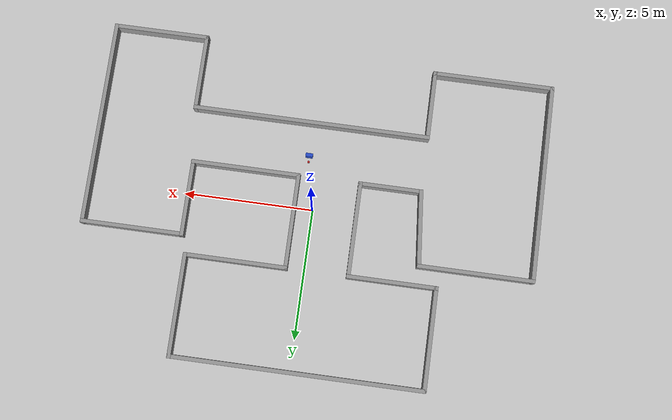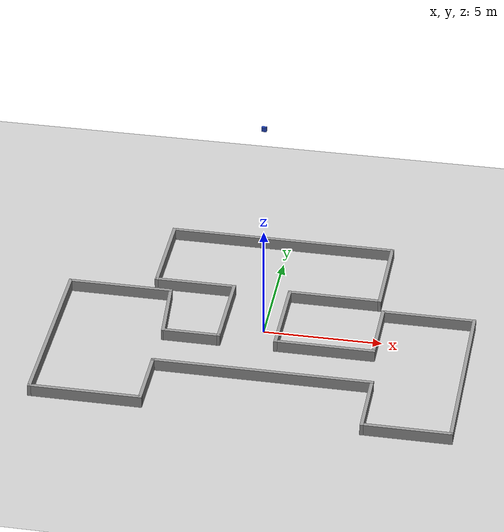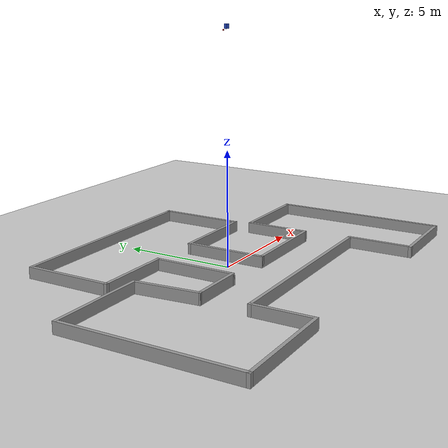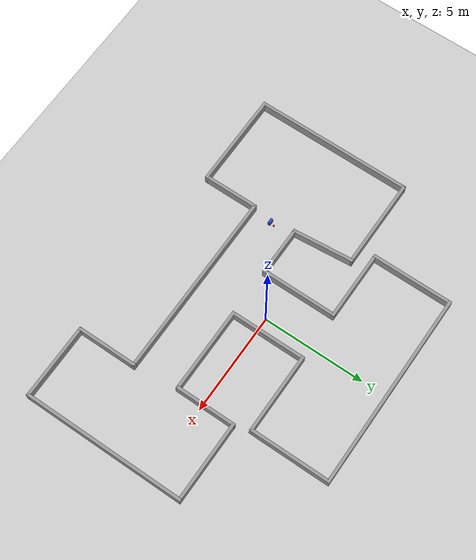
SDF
<sdf version="1.6">
  <world name="default">
    <include>
      <uri>model://sun</uri>
    </include>

    <model name="ground_plane">
      <static>true</static>
      <link name="link">
        <collision name="collision">
          <geometry>
            <plane>
              <normal>0 0 1</normal>
              <size>100 100</size>
            </plane>
          </geometry>
          <surface>
            <friction>
              <ode>
                <mu>100</mu>
                <mu2>50</mu2>
              </ode>
            </friction>
            <torsional>
              <ode/>
            </torsional>
          </surface>
          <contact>
            <ode/>
          </contact>
          <bounce/>
        </collision>
        <visual name="visual">
          <geometry>
            <plane>
              <normal>0 0 1</normal>
              <size>100 100</size>
            </plane>
          </geometry>
          <material>
            <script>
              <uri>file://media/materials/scripts/gazebo.material</uri>
              <name>Gazebo/Grey</name>
            </script>
          </material>
        </visual>
        <self_collide>0</self_collide>
        <kinematic>0</kinematic>
        <gravity>1</gravity>
      </link>
    </model>

     <include>
      <uri>model://test_map</uri>
      <name>model</name>
      <pose>0 0 0 0 0 0</pose>
    </include>

    <model name="my_robot_with_camera">
    <static>true</static>
      <pose>0 0 10 0 1.5708 1.5708</pose>
      <link name="base_link">
        <inertial>
          <mass>1.0</mass>
          <inertia>
            <ixx>0.1</ixx>
            <ixy>0.0</ixy>
            <ixz>0.0</ixz>
            <iyy>0.1</iyy>
            <iyz>0.0</iyz>
            <izz>0.1</izz>
          </inertia>
        </inertial>
        <visual name="visual">
          <geometry>
            <box>
              <size>0.2 0.2 0.1</size>
            </box>
          </geometry>
          <material>
            <script>
              <uri>file://media/materials/scripts/gazebo.material</uri>
              <name>Gazebo/Blue</name>
            </script>
          </material>
        </visual>
        <collision name="collision">
          <geometry>
            <box>
              <size>0.2 0.2 0.1</size>
            </box>
          </geometry>
        </collision>
      </link>

      <link name="camera_link">
        <pose>0.15 0 0.15  0 0 0</pose>
        <visual name="camera_visual">
          <geometry>
            <box>
              <size>0.05 0.05 0.05</size>
            </box>
          </geometry>
          <material>
            <script>
              <uri>file://media/materials/scripts/gazebo.material</uri>
              <name>Gazebo/Red</name>
            </script>
          </material>
        </visual>
        <inertial>
          <mass>0.01</mass>
          <inertia>
            <ixx>1e-6</ixx>
            <ixy>0</ixy>
            <ixz>0</ixz>
            <iyy>1e-6</iyy>
            <iyz>0</iyz>
            <izz>1e-6</izz>
          </inertia>
        </inertial>
        <sensor name="camera_sensor" type="camera">
          <camera>
            <horizontal_fov>1.047</horizontal_fov>
            <image>
              <width>640</width>
              <height>480</height>
              <format>R8G8B8</format>
            </image>
            <clip>
              <near>0.1</near>
              <far>100</far>
            </clip>
          </camera>
          <plugin name="camera_controller" filename="libgazebo_ros_camera.so">
            <ros>
              <namespace>/my_robot</namespace>
              <remapping>image:=camera/image_raw</remapping>
            </ros>
            <cameraName>camera</cameraName>
            <updateRate>30.0</updateRate>
            <imageTopicName>camera/image_raw</imageTopicName>
            <cameraInfoTopicName>camera/camera_info</cameraInfoTopicName>
            <frameName>camera_link</frameName>
          </plugin>
        </sensor>
      </link>

      <joint name="camera_joint" type="fixed">
        <parent>base_link</parent>
        <child>camera_link</child>
        <pose>0.1 0 0.1 0 0 0</pose>
      </joint>
    </model>

  </world>
</sdf>

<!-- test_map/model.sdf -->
<sdf version='1.6'>
  <model name='test_map'>
    <pose frame=''>0.461 2.457 0 0 -0 0</pose>
    <link name='Wall_11'>
      <collision name='Wall_11_Collision'>
        <geometry>
          <box>
            <size>2.5 0.15 0.5</size>
          </box>
        </geometry>
        <pose frame=''>0 0 0.25 0 -0 0</pose>
      </collision>
      <visual name='Wall_11_Visual'>
        <pose frame=''>0 0 0.25 0 -0 0</pose>
        <geometry>
          <box>
            <size>2.5 0.15 0.5</size>
          </box>
        </geometry>
        <material>
          <script>
            <uri>file://media/materials/scripts/gazebo.material</uri>
            <name>Gazebo/Grey</name>
          </script>
          <ambient>1 1 1 1</ambient>
        </material>
        <meta>
          <layer>0</layer>
        </meta>
      </visual>
      <pose frame=''>-2.875 -1.225 0 0 -0 0</pose>
    </link>
    <link name='Wall_12'>
      <collision name='Wall_12_Collision'>
        <geometry>
          <box>
            <size>3.75 0.15 0.5</size>
          </box>
        </geometry>
        <pose frame=''>0 0 0.25 0 -0 0</pose>
      </collision>
      <visual name='Wall_12_Visual'>
        <pose frame=''>0 0 0.25 0 -0 0</pose>
        <geometry>
          <box>
            <size>3.75 0.15 0.5</size>
          </box>
        </geometry>
        <material>
          <script>
            <uri>file://media/materials/scripts/gazebo.material</uri>
            <name>Gazebo/Grey</name>
          </script>
          <ambient>1 1 1 1</ambient>
        </material>
        <meta>
          <layer>0</layer>
        </meta>
      </visual>
      <pose frame=''>-1.7 0.575 0 0 -0 1.5708</pose>
    </link>
    <link name='Wall_13'>
      <collision name='Wall_13_Collision'>
        <geometry>
          <box>
            <size>3.5 0.15 0.5</size>
          </box>
        </geometry>
        <pose frame=''>0 0 0.25 0 -0 0</pose>
      </collision>
      <visual name='Wall_13_Visual'>
        <pose frame=''>0 0 0.25 0 -0 0</pose>
        <geometry>
          <box>
            <size>3.5 0.15 0.5</size>
          </box>
        </geometry>
        <material>
          <script>
            <uri>file://media/materials/scripts/gazebo.material</uri>
            <name>Gazebo/Grey</name>
          </script>
          <ambient>1 1 1 1</ambient>
        </material>
        <meta>
          <layer>0</layer>
        </meta>
      </visual>
      <pose frame=''>-3.375 2.375 0 0 -0 3.14159</pose>
    </link>
    <link name='Wall_14'>
      <collision name='Wall_14_Collision'>
        <geometry>
          <box>
            <size>4 0.15 0.5</size>
          </box>
        </geometry>
        <pose frame=''>0 0 0.25 0 -0 0</pose>
      </collision>
      <visual name='Wall_14_Visual'>
        <pose frame=''>0 0 0.25 0 -0 0</pose>
        <geometry>
          <box>
            <size>4 0.15 0.5</size>
          </box>
        </geometry>
        <material>
          <script>
            <uri>file://media/materials/scripts/gazebo.material</uri>
            <name>Gazebo/Grey</name>
          </script>
          <ambient>1 1 1 1</ambient>
        </material>
        <meta>
          <layer>0</layer>
        </meta>
      </visual>
      <pose frame=''>-5.05 4.3 0 0 -0 1.5708</pose>
    </link>
    <link name='Wall_15'>
      <collision name='Wall_15_Collision'>
        <geometry>
          <box>
            <size>9.75 0.15 0.5</size>
          </box>
        </geometry>
        <pose frame=''>0 0 0.25 0 -0 0</pose>
      </collision>
      <visual name='Wall_15_Visual'>
        <pose frame=''>0 0 0.25 0 -0 0</pose>
        <geometry>
          <box>
            <size>9.75 0.15 0.5</size>
          </box>
        </geometry>
        <material>
          <script>
            <uri>file://media/materials/scripts/gazebo.material</uri>
            <name>Gazebo/Grey</name>
          </script>
          <ambient>1 1 1 1</ambient>
        </material>
        <meta>
          <layer>0</layer>
        </meta>
      </visual>
      <pose frame=''>-0.25 6.225 0 0 -0 0</pose>
    </link>
    <link name='Wall_16'>
      <collision name='Wall_16_Collision'>
        <geometry>
          <box>
            <size>4 0.15 0.5</size>
          </box>
        </geometry>
        <pose frame=''>0 0 0.25 0 -0 0</pose>
      </collision>
      <visual name='Wall_16_Visual'>
        <pose frame=''>0 0 0.25 0 -0 0</pose>
        <geometry>
          <box>
            <size>4 0.15 0.5</size>
          </box>
        </geometry>
        <material>
          <script>
            <uri>file://media/materials/scripts/gazebo.material</uri>
            <name>Gazebo/Grey</name>
          </script>
          <ambient>1 1 1 1</ambient>
        </material>
        <meta>
          <layer>0</layer>
        </meta>
      </visual>
      <pose frame=''>4.55 4.3 0 0 -0 -1.5708</pose>
    </link>
    <link name='Wall_17'>
      <collision name='Wall_17_Collision'>
        <geometry>
          <box>
            <size>4 0.15 0.5</size>
          </box>
        </geometry>
        <pose frame=''>0 0 0.25 0 -0 0</pose>
      </collision>
      <visual name='Wall_17_Visual'>
        <pose frame=''>0 0 0.25 0 -0 0</pose>
        <geometry>
          <box>
            <size>4 0.15 0.5</size>
          </box>
        </geometry>
        <material>
          <script>
            <uri>file://media/materials/scripts/gazebo.material</uri>
            <name>Gazebo/Grey</name>
          </script>
          <ambient>1 1 1 1</ambient>
        </material>
        <meta>
          <layer>0</layer>
        </meta>
      </visual>
      <pose frame=''>2.625 2.375 0 0 -0 3.14159</pose>
    </link>
    <link name='Wall_18'>
      <collision name='Wall_18_Collision'>
        <geometry>
          <box>
            <size>3.75 0.15 0.5</size>
          </box>
        </geometry>
        <pose frame=''>0 0 0.25 0 -0 0</pose>
      </collision>
      <visual name='Wall_18_Visual'>
        <pose frame=''>0 0 0.25 0 -0 0</pose>
        <geometry>
          <box>
            <size>3.75 0.15 0.5</size>
          </box>
        </geometry>
        <material>
          <script>
            <uri>file://media/materials/scripts/gazebo.material</uri>
            <name>Gazebo/Grey</name>
          </script>
          <ambient>1 1 1 1</ambient>
        </material>
        <meta>
          <layer>0</layer>
        </meta>
      </visual>
      <pose frame=''>0.7 0.575 0 0 -0 -1.5708</pose>
    </link>
    <link name='Wall_19'>
      <collision name='Wall_19_Collision'>
        <geometry>
          <box>
            <size>4.25 0.15 0.5</size>
          </box>
        </geometry>
        <pose frame=''>0 0 0.25 0 -0 0</pose>
      </collision>
      <visual name='Wall_19_Visual'>
        <pose frame=''>0 0 0.25 0 -0 0</pose>
        <geometry>
          <box>
            <size>4.25 0.15 0.5</size>
          </box>
        </geometry>
        <material>
          <script>
            <uri>file://media/materials/scripts/gazebo.material</uri>
            <name>Gazebo/Grey</name>
          </script>
          <ambient>1 1 1 1</ambient>
        </material>
        <meta>
          <layer>0</layer>
        </meta>
      </visual>
      <pose frame=''>2.75 -1.225 0 0 -0 0</pose>
    </link>
    <link name='Wall_20'>
      <collision name='Wall_20_Collision'>
        <geometry>
          <box>
            <size>3 0.15 0.5</size>
          </box>
        </geometry>
        <pose frame=''>0 0 0.25 0 -0 0</pose>
      </collision>
      <visual name='Wall_20_Visual'>
        <pose frame=''>0 0 0.25 0 -0 0</pose>
        <geometry>
          <box>
            <size>3 0.15 0.5</size>
          </box>
        </geometry>
        <material>
          <script>
            <uri>file://media/materials/scripts/gazebo.material</uri>
            <name>Gazebo/Grey</name>
          </script>
          <ambient>1 1 1 1</ambient>
        </material>
        <meta>
          <layer>0</layer>
        </meta>
      </visual>
      <pose frame=''>4.8 0.2 0 0 -0 1.5708</pose>
    </link>
    <link name='Wall_21'>
      <collision name='Wall_21_Collision'>
        <geometry>
          <box>
            <size>4 0.15 0.5</size>
          </box>
        </geometry>
        <pose frame=''>0 0 0.25 0 -0 0</pose>
      </collision>
      <visual name='Wall_21_Visual'>
        <pose frame=''>0 0 0.25 0 -0 0</pose>
        <geometry>
          <box>
            <size>4 0.15 0.5</size>
          </box>
        </geometry>
        <material>
          <script>
            <uri>file://media/materials/scripts/gazebo.material</uri>
            <name>Gazebo/Grey</name>
          </script>
          <ambient>1 1 1 1</ambient>
        </material>
        <meta>
          <layer>0</layer>
        </meta>
      </visual>
      <pose frame=''>6.725 1.625 0 0 -0 0</pose>
    </link>
    <link name='Wall_22'>
      <collision name='Wall_22_Collision'>
        <geometry>
          <box>
            <size>8 0.15 0.5</size>
          </box>
        </geometry>
        <pose frame=''>0 0 0.25 0 -0 0</pose>
      </collision>
      <visual name='Wall_22_Visual'>
        <pose frame=''>0 0 0.25 0 -0 0</pose>
        <geometry>
          <box>
            <size>8 0.15 0.5</size>
          </box>
        </geometry>
        <material>
          <script>
            <uri>file://media/materials/scripts/gazebo.material</uri>
            <name>Gazebo/Grey</name>
          </script>
          <ambient>1 1 1 1</ambient>
        </material>
        <meta>
          <layer>0</layer>
        </meta>
      </visual>
      <pose frame=''>8.65 -2.3 0 0 -0 -1.5708</pose>
    </link>
    <link name='Wall_23'>
      <collision name='Wall_23_Collision'>
        <geometry>
          <box>
            <size>3.75 0.15 0.5</size>
          </box>
        </geometry>
        <pose frame=''>0 0 0.25 0 -0 0</pose>
      </collision>
      <visual name='Wall_23_Visual'>
        <pose frame=''>0 0 0.25 0 -0 0</pose>
        <geometry>
          <box>
            <size>3.75 0.15 0.5</size>
          </box>
        </geometry>
        <material>
          <script>
            <uri>file://media/materials/scripts/gazebo.material</uri>
            <name>Gazebo/Grey</name>
          </script>
          <ambient>1 1 1 1</ambient>
        </material>
        <meta>
          <layer>0</layer>
        </meta>
      </visual>
      <pose frame=''>6.85 -6.225 0 0 -0 3.14159</pose>
    </link>
    <link name='Wall_24'>
      <collision name='Wall_24_Collision'>
        <geometry>
          <box>
            <size>3 0.15 0.5</size>
          </box>
        </geometry>
        <pose frame=''>0 0 0.25 0 -0 0</pose>
      </collision>
      <visual name='Wall_24_Visual'>
        <pose frame=''>0 0 0.25 0 -0 0</pose>
        <geometry>
          <box>
            <size>3 0.15 0.5</size>
          </box>
        </geometry>
        <material>
          <script>
            <uri>file://media/materials/scripts/gazebo.material</uri>
            <name>Gazebo/Grey</name>
          </script>
          <ambient>1 1 1 1</ambient>
        </material>
        <meta>
          <layer>0</layer>
        </meta>
      </visual>
      <pose frame=''>5.05 -4.8 0 0 -0 1.5708</pose>
    </link>
    <link name='Wall_25'>
      <collision name='Wall_25_Collision'>
        <geometry>
          <box>
            <size>9.25 0.15 0.5</size>
          </box>
        </geometry>
        <pose frame=''>0 0 0.25 0 -0 0</pose>
      </collision>
      <visual name='Wall_25_Visual'>
        <pose frame=''>0 0 0.25 0 -0 0</pose>
        <geometry>
          <box>
            <size>9.25 0.15 0.5</size>
          </box>
        </geometry>
        <material>
          <script>
            <uri>file://media/materials/scripts/gazebo.material</uri>
            <name>Gazebo/Grey</name>
          </script>
          <ambient>1 1 1 1</ambient>
        </material>
        <meta>
          <layer>0</layer>
        </meta>
      </visual>
      <pose frame=''>0.5 -3.375 0 0 -0 3.14159</pose>
    </link>
    <link name='Wall_26'>
      <collision name='Wall_26_Collision'>
        <geometry>
          <box>
            <size>2.75 0.15 0.5</size>
          </box>
        </geometry>
        <pose frame=''>0 0 0.25 0 -0 0</pose>
      </collision>
      <visual name='Wall_26_Visual'>
        <pose frame=''>0 0 0.25 0 -0 0</pose>
        <geometry>
          <box>
            <size>2.75 0.15 0.5</size>
          </box>
        </geometry>
        <material>
          <script>
            <uri>file://media/materials/scripts/gazebo.material</uri>
            <name>Gazebo/Grey</name>
          </script>
          <ambient>1 1 1 1</ambient>
        </material>
        <meta>
          <layer>0</layer>
        </meta>
      </visual>
      <pose frame=''>-4.05 -4.675 0 0 -0 -1.5708</pose>
    </link>
    <link name='Wall_27'>
      <collision name='Wall_27_Collision'>
        <geometry>
          <box>
            <size>4.75 0.15 0.5</size>
          </box>
        </geometry>
        <pose frame=''>0 0 0.25 0 -0 0</pose>
      </collision>
      <visual name='Wall_27_Visual'>
        <pose frame=''>0 0 0.25 0 -0 0</pose>
        <geometry>
          <box>
            <size>4.75 0.15 0.5</size>
          </box>
        </geometry>
        <material>
          <script>
            <uri>file://media/materials/scripts/gazebo.material</uri>
            <name>Gazebo/Grey</name>
          </script>
          <ambient>1 1 1 1</ambient>
        </material>
        <meta>
          <layer>0</layer>
        </meta>
      </visual>
      <pose frame=''>-6.35 -5.975 0 0 -0 3.14159</pose>
    </link>
    <link name='Wall_28'>
      <collision name='Wall_28_Collision'>
        <geometry>
          <box>
            <size>7.75 0.15 0.5</size>
          </box>
        </geometry>
        <pose frame=''>0 0 0.25 0 -0 0</pose>
      </collision>
      <visual name='Wall_28_Visual'>
        <pose frame=''>0 0 0.25 0 -0 0</pose>
        <geometry>
          <box>
            <size>7.75 0.15 0.5</size>
          </box>
        </geometry>
        <material>
          <script>
            <uri>file://media/materials/scripts/gazebo.material</uri>
            <name>Gazebo/Grey</name>
          </script>
          <ambient>1 1 1 1</ambient>
        </material>
        <meta>
          <layer>0</layer>
        </meta>
      </visual>
      <pose frame=''>-8.65 -2.175 0 0 -0 1.5708</pose>
    </link>
    <link name='Wall_29'>
      <collision name='Wall_29_Collision'>
        <geometry>
          <box>
            <size>4.5 0.15 0.5</size>
          </box>
        </geometry>
        <pose frame=''>0 0 0.25 0 -0 0</pose>
      </collision>
      <visual name='Wall_29_Visual'>
        <pose frame=''>0 0 0.25 0 -0 0</pose>
        <geometry>
          <box>
            <size>4.5 0.15 0.5</size>
          </box>
        </geometry>
        <material>
          <script>
            <uri>file://media/materials/scripts/gazebo.material</uri>
            <name>Gazebo/Grey</name>
          </script>
          <ambient>1 1 1 1</ambient>
        </material>
        <meta>
          <layer>0</layer>
        </meta>
      </visual>
      <pose frame=''>-6.475 1.625 0 0 -0 0</pose>
    </link>
    <link name='Wall_30'>
      <collision name='Wall_30_Collision'>
        <geometry>
          <box>
            <size>3.01094 0.15 0.5</size>
          </box>
        </geometry>
        <pose frame=''>0 0 0.25 0 -0 0</pose>
      </collision>
      <visual name='Wall_30_Visual'>
        <pose frame=''>0 0 0.25 0 -0 0</pose>
        <geometry>
          <box>
            <size>3.01094 0.15 0.5</size>
          </box>
        </geometry>
        <material>
          <script>
            <uri>file://media/materials/scripts/gazebo.material</uri>
            <name>Gazebo/Grey</name>
          </script>
          <ambient>1 1 1 1</ambient>
        </material>
        <meta>
          <layer>0</layer>
        </meta>
      </visual>
      <pose frame=''>-4.175 0.2 0 0 -0 -1.4833</pose>
    </link>
    <static>1</static>
  </model>
</sdf>
